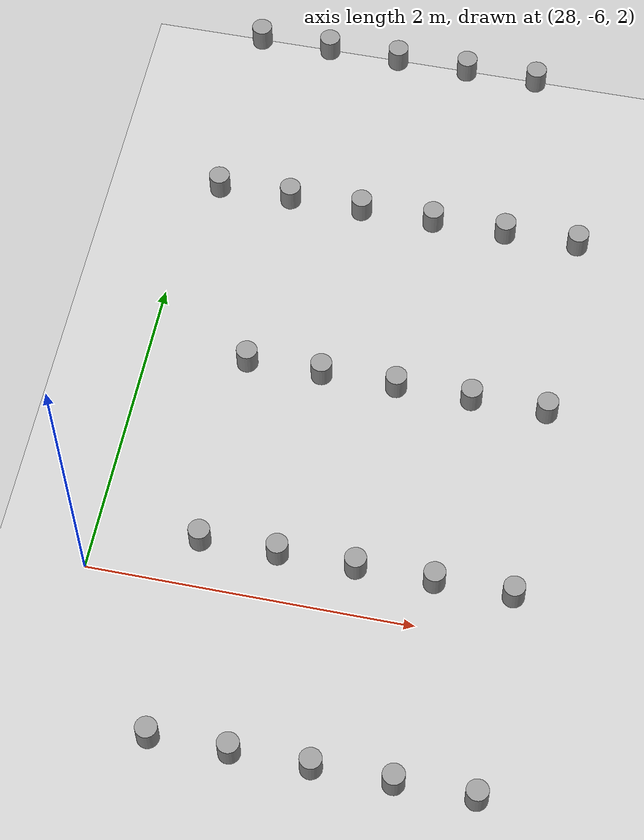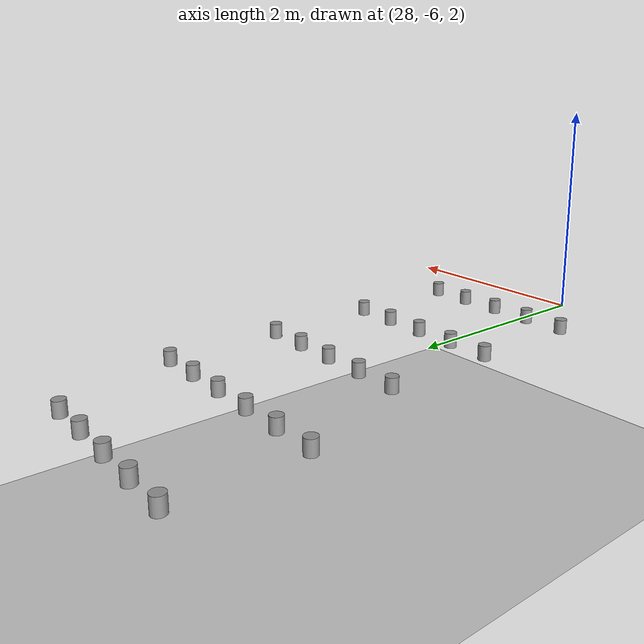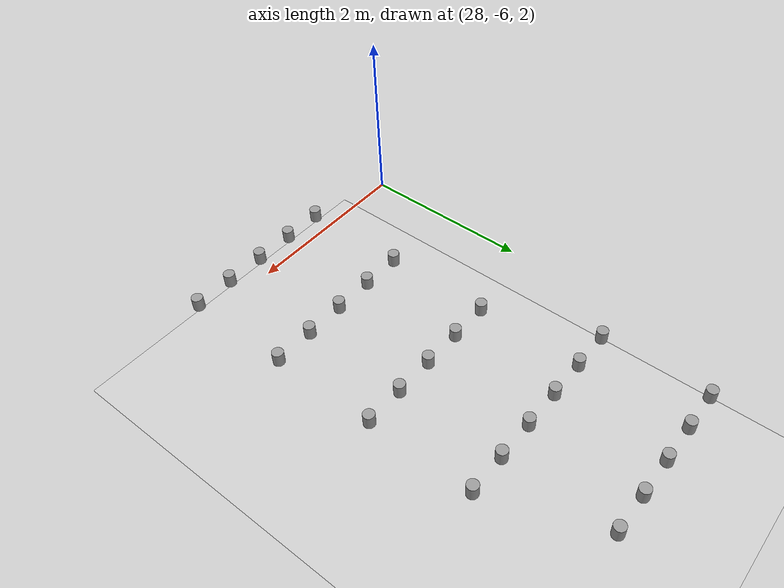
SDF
<sdf version="1.4">
 <world name="default">
  <model name="pot_213">
   <static>1</static>
   <link name="link_0">
    <collision name="collision">
     <geometry><cylinder><length>0.17</length><radius>0.07</radius></cylinder></geometry>
    </collision>
    <visual name="visual">
     <geometry><cylinder><length>0.17</length><radius>0.07</radius></cylinder></geometry>
     <material>
      <script><uri>file://media/materials/scripts/gazebo.material</uri><name>Gazebo/Grey</name></script>
      <emissive>0 0 0 1</emissive>
      <shader type="vertex"><normal_map>__default__</normal_map></shader>
      <specular>0.01 0.01 0.01 1</specular>
      <lighting>1</lighting>
      <ambient>0.1 0.1 0.1 1</ambient>
      <diffuse>0.05 0.05 0.05 1</diffuse>
     </material>
     <cast_shadows>0</cast_shadows>
    </visual>
    <pose>28.024 -2.700 1.467 0.0 0.0 0.0</pose>
   </link>
  </model>
  <model name="pot_214">
   <static>1</static>
   <link name="link_0">
    <collision name="collision">
     <geometry><cylinder><length>0.17</length><radius>0.07</radius></cylinder></geometry>
    </collision>
    <visual name="visual">
     <geometry><cylinder><length>0.17</length><radius>0.07</radius></cylinder></geometry>
     <material>
      <script><uri>file://media/materials/scripts/gazebo.material</uri><name>Gazebo/Grey</name></script>
      <emissive>0 0 0 1</emissive>
      <shader type="vertex"><normal_map>__default__</normal_map></shader>
      <specular>0.01 0.01 0.01 1</specular>
      <lighting>1</lighting>
      <ambient>0.1 0.1 0.1 1</ambient>
      <diffuse>0.05 0.05 0.05 1</diffuse>
     </material>
     <cast_shadows>0</cast_shadows>
    </visual>
    <pose>28.024 -1.350 1.467 0.0 0.0 0.0</pose>
   </link>
  </model>
  <model name="pot_215">
   <static>1</static>
   <link name="link_0">
    <collision name="collision">
     <geometry><cylinder><length>0.17</length><radius>0.07</radius></cylinder></geometry>
    </collision>
    <visual name="visual">
     <geometry><cylinder><length>0.17</length><radius>0.07</radius></cylinder></geometry>
     <material>
      <script><uri>file://media/materials/scripts/gazebo.material</uri><name>Gazebo/Grey</name></script>
      <emissive>0 0 0 1</emissive>
      <shader type="vertex"><normal_map>__default__</normal_map></shader>
      <specular>0.01 0.01 0.01 1</specular>
      <lighting>1</lighting>
      <ambient>0.1 0.1 0.1 1</ambient>
      <diffuse>0.05 0.05 0.05 1</diffuse>
     </material>
     <cast_shadows>0</cast_shadows>
    </visual>
    <pose>28.524 -6.750 1.467 0.0 0.0 0.0</pose>
   </link>
  </model>
  <model name="pot_216">
   <static>1</static>
   <link name="link_0">
    <collision name="collision">
     <geometry><cylinder><length>0.17</length><radius>0.07</radius></cylinder></geometry>
    </collision>
    <visual name="visual">
     <geometry><cylinder><length>0.17</length><radius>0.07</radius></cylinder></geometry>
     <material>
      <script><uri>file://media/materials/scripts/gazebo.material</uri><name>Gazebo/Grey</name></script>
      <emissive>0 0 0 1</emissive>
      <shader type="vertex"><normal_map>__default__</normal_map></shader>
      <specular>0.01 0.01 0.01 1</specular>
      <lighting>1</lighting>
      <ambient>0.1 0.1 0.1 1</ambient>
      <diffuse>0.05 0.05 0.05 1</diffuse>
     </material>
     <cast_shadows>0</cast_shadows>
    </visual>
    <pose>28.524 -5.400 1.467 0.0 0.0 0.0</pose>
   </link>
  </model>
  <model name="pot_217">
   <static>1</static>
   <link name="link_0">
    <collision name="collision">
     <geometry><cylinder><length>0.17</length><radius>0.07</radius></cylinder></geometry>
    </collision>
    <visual name="visual">
     <geometry><cylinder><length>0.17</length><radius>0.07</radius></cylinder></geometry>
     <material>
      <script><uri>file://media/materials/scripts/gazebo.material</uri><name>Gazebo/Grey</name></script>
      <emissive>0 0 0 1</emissive>
      <shader type="vertex"><normal_map>__default__</normal_map></shader>
      <specular>0.01 0.01 0.01 1</specular>
      <lighting>1</lighting>
      <ambient>0.1 0.1 0.1 1</ambient>
      <diffuse>0.05 0.05 0.05 1</diffuse>
     </material>
     <cast_shadows>0</cast_shadows>
    </visual>
    <pose>28.524 -4.050 1.467 0.0 0.0 0.0</pose>
   </link>
  </model>
  <model name="pot_218">
   <static>1</static>
   <link name="link_0">
    <collision name="collision">
     <geometry><cylinder><length>0.17</length><radius>0.07</radius></cylinder></geometry>
    </collision>
    <visual name="visual">
     <geometry><cylinder><length>0.17</length><radius>0.07</radius></cylinder></geometry>
     <material>
      <script><uri>file://media/materials/scripts/gazebo.material</uri><name>Gazebo/Grey</name></script>
      <emissive>0 0 0 1</emissive>
      <shader type="vertex"><normal_map>__default__</normal_map></shader>
      <specular>0.01 0.01 0.01 1</specular>
      <lighting>1</lighting>
      <ambient>0.1 0.1 0.1 1</ambient>
      <diffuse>0.05 0.05 0.05 1</diffuse>
     </material>
     <cast_shadows>0</cast_shadows>
    </visual>
    <pose>28.524 -2.700 1.467 0.0 0.0 0.0</pose>
   </link>
  </model>
  <model name="pot_219">
   <static>1</static>
   <link name="link_0">
    <collision name="collision">
     <geometry><cylinder><length>0.17</length><radius>0.07</radius></cylinder></geometry>
    </collision>
    <visual name="visual">
     <geometry><cylinder><length>0.17</length><radius>0.07</radius></cylinder></geometry>
     <material>
      <script><uri>file://media/materials/scripts/gazebo.material</uri><name>Gazebo/Grey</name></script>
      <emissive>0 0 0 1</emissive>
      <shader type="vertex"><normal_map>__default__</normal_map></shader>
      <specular>0.01 0.01 0.01 1</specular>
      <lighting>1</lighting>
      <ambient>0.1 0.1 0.1 1</ambient>
      <diffuse>0.05 0.05 0.05 1</diffuse>
     </material>
     <cast_shadows>0</cast_shadows>
    </visual>
    <pose>28.524 -1.350 1.467 0.0 0.0 0.0</pose>
   </link>
  </model>
  <model name="pot_220">
   <static>1</static>
   <link name="link_0">
    <collision name="collision">
     <geometry><cylinder><length>0.17</length><radius>0.07</radius></cylinder></geometry>
    </collision>
    <visual name="visual">
     <geometry><cylinder><length>0.17</length><radius>0.07</radius></cylinder></geometry>
     <material>
      <script><uri>file://media/materials/scripts/gazebo.material</uri><name>Gazebo/Grey</name></script>
      <emissive>0 0 0 1</emissive>
      <shader type="vertex"><normal_map>__default__</normal_map></shader>
      <specular>0.01 0.01 0.01 1</specular>
      <lighting>1</lighting>
      <ambient>0.1 0.1 0.1 1</ambient>
      <diffuse>0.05 0.05 0.05 1</diffuse>
     </material>
     <cast_shadows>0</cast_shadows>
    </visual>
    <pose>29.024 -6.750 1.467 0.0 0.0 0.0</pose>
   </link>
  </model>
  <model name="pot_221">
   <static>1</static>
   <link name="link_0">
    <collision name="collision">
     <geometry><cylinder><length>0.17</length><radius>0.07</radius></cylinder></geometry>
    </collision>
    <visual name="visual">
     <geometry><cylinder><length>0.17</length><radius>0.07</radius></cylinder></geometry>
     <material>
      <script><uri>file://media/materials/scripts/gazebo.material</uri><name>Gazebo/Grey</name></script>
      <emissive>0 0 0 1</emissive>
      <shader type="vertex"><normal_map>__default__</normal_map></shader>
      <specular>0.01 0.01 0.01 1</specular>
      <lighting>1</lighting>
      <ambient>0.1 0.1 0.1 1</ambient>
      <diffuse>0.05 0.05 0.05 1</diffuse>
     </material>
     <cast_shadows>0</cast_shadows>
    </visual>
    <pose>29.024 -5.400 1.467 0.0 0.0 0.0</pose>
   </link>
  </model>
  <model name="pot_222">
   <static>1</static>
   <link name="link_0">
    <collision name="collision">
     <geometry><cylinder><length>0.17</length><radius>0.07</radius></cylinder></geometry>
    </collision>
    <visual name="visual">
     <geometry><cylinder><length>0.17</length><radius>0.07</radius></cylinder></geometry>
     <material>
      <script><uri>file://media/materials/scripts/gazebo.material</uri><name>Gazebo/Grey</name></script>
      <emissive>0 0 0 1</emissive>
      <shader type="vertex"><normal_map>__default__</normal_map></shader>
      <specular>0.01 0.01 0.01 1</specular>
      <lighting>1</lighting>
      <ambient>0.1 0.1 0.1 1</ambient>
      <diffuse>0.05 0.05 0.05 1</diffuse>
     </material>
     <cast_shadows>0</cast_shadows>
    </visual>
    <pose>29.024 -4.050 1.467 0.0 0.0 0.0</pose>
   </link>
  </model>
  <model name="pot_223">
   <static>1</static>
   <link name="link_0">
    <collision name="collision">
     <geometry><cylinder><length>0.17</length><radius>0.07</radius></cylinder></geometry>
    </collision>
    <visual name="visual">
     <geometry><cylinder><length>0.17</length><radius>0.07</radius></cylinder></geometry>
     <material>
      <script><uri>file://media/materials/scripts/gazebo.material</uri><name>Gazebo/Grey</name></script>
      <emissive>0 0 0 1</emissive>
      <shader type="vertex"><normal_map>__default__</normal_map></shader>
      <specular>0.01 0.01 0.01 1</specular>
      <lighting>1</lighting>
      <ambient>0.1 0.1 0.1 1</ambient>
      <diffuse>0.05 0.05 0.05 1</diffuse>
     </material>
     <cast_shadows>0</cast_shadows>
    </visual>
    <pose>29.024 -2.700 1.467 0.0 0.0 0.0</pose>
   </link>
  </model>
  <model name="pot_224">
   <static>1</static>
   <link name="link_0">
    <collision name="collision">
     <geometry><cylinder><length>0.17</length><radius>0.07</radius></cylinder></geometry>
    </collision>
    <visual name="visual">
     <geometry><cylinder><length>0.17</length><radius>0.07</radius></cylinder></geometry>
     <material>
      <script><uri>file://media/materials/scripts/gazebo.material</uri><name>Gazebo/Grey</name></script>
      <emissive>0 0 0 1</emissive>
      <shader type="vertex"><normal_map>__default__</normal_map></shader>
      <specular>0.01 0.01 0.01 1</specular>
      <lighting>1</lighting>
      <ambient>0.1 0.1 0.1 1</ambient>
      <diffuse>0.05 0.05 0.05 1</diffuse>
     </material>
     <cast_shadows>0</cast_shadows>
    </visual>
    <pose>29.024 -1.350 1.467 0.0 0.0 0.0</pose>
   </link>
  </model>
  <model name="pot_225">
   <static>1</static>
   <link name="link_0">
    <collision name="collision">
     <geometry><cylinder><length>0.17</length><radius>0.07</radius></cylinder></geometry>
    </collision>
    <visual name="visual">
     <geometry><cylinder><length>0.17</length><radius>0.07</radius></cylinder></geometry>
     <material>
      <script><uri>file://media/materials/scripts/gazebo.material</uri><name>Gazebo/Grey</name></script>
      <emissive>0 0 0 1</emissive>
      <shader type="vertex"><normal_map>__default__</normal_map></shader>
      <specular>0.01 0.01 0.01 1</specular>
      <lighting>1</lighting>
      <ambient>0.1 0.1 0.1 1</ambient>
      <diffuse>0.05 0.05 0.05 1</diffuse>
     </material>
     <cast_shadows>0</cast_shadows>
    </visual>
    <pose>29.524 -6.750 1.467 0.0 0.0 0.0</pose>
   </link>
  </model>
  <model name="pot_226">
   <static>1</static>
   <link name="link_0">
    <collision name="collision">
     <geometry><cylinder><length>0.17</length><radius>0.07</radius></cylinder></geometry>
    </collision>
    <visual name="visual">
     <geometry><cylinder><length>0.17</length><radius>0.07</radius></cylinder></geometry>
     <material>
      <script><uri>file://media/materials/scripts/gazebo.material</uri><name>Gazebo/Grey</name></script>
      <emissive>0 0 0 1</emissive>
      <shader type="vertex"><normal_map>__default__</normal_map></shader>
      <specular>0.01 0.01 0.01 1</specular>
      <lighting>1</lighting>
      <ambient>0.1 0.1 0.1 1</ambient>
      <diffuse>0.05 0.05 0.05 1</diffuse>
     </material>
     <cast_shadows>0</cast_shadows>
    </visual>
    <pose>29.524 -5.400 1.467 0.0 0.0 0.0</pose>
   </link>
  </model>
  <model name="pot_227">
   <static>1</static>
   <link name="link_0">
    <collision name="collision">
     <geometry><cylinder><length>0.17</length><radius>0.07</radius></cylinder></geometry>
    </collision>
    <visual name="visual">
     <geometry><cylinder><length>0.17</length><radius>0.07</radius></cylinder></geometry>
     <material>
      <script><uri>file://media/materials/scripts/gazebo.material</uri><name>Gazebo/Grey</name></script>
      <emissive>0 0 0 1</emissive>
      <shader type="vertex"><normal_map>__default__</normal_map></shader>
      <specular>0.01 0.01 0.01 1</specular>
      <lighting>1</lighting>
      <ambient>0.1 0.1 0.1 1</ambient>
      <diffuse>0.05 0.05 0.05 1</diffuse>
     </material>
     <cast_shadows>0</cast_shadows>
    </visual>
    <pose>29.524 -4.050 1.467 0.0 0.0 0.0</pose>
   </link>
  </model>
  <model name="pot_228">
   <static>1</static>
   <link name="link_0">
    <collision name="collision">
     <geometry><cylinder><length>0.17</length><radius>0.07</radius></cylinder></geometry>
    </collision>
    <visual name="visual">
     <geometry><cylinder><length>0.17</length><radius>0.07</radius></cylinder></geometry>
     <material>
      <script><uri>file://media/materials/scripts/gazebo.material</uri><name>Gazebo/Grey</name></script>
      <emissive>0 0 0 1</emissive>
      <shader type="vertex"><normal_map>__default__</normal_map></shader>
      <specular>0.01 0.01 0.01 1</specular>
      <lighting>1</lighting>
      <ambient>0.1 0.1 0.1 1</ambient>
      <diffuse>0.05 0.05 0.05 1</diffuse>
     </material>
     <cast_shadows>0</cast_shadows>
    </visual>
    <pose>29.524 -2.700 1.467 0.0 0.0 0.0</pose>
   </link>
  </model>
  <model name="pot_229">
   <static>1</static>
   <link name="link_0">
    <collision name="collision">
     <geometry><cylinder><length>0.17</length><radius>0.07</radius></cylinder></geometry>
    </collision>
    <visual name="visual">
     <geometry><cylinder><length>0.17</length><radius>0.07</radius></cylinder></geometry>
     <material>
      <script><uri>file://media/materials/scripts/gazebo.material</uri><name>Gazebo/Grey</name></script>
      <emissive>0 0 0 1</emissive>
      <shader type="vertex"><normal_map>__default__</normal_map></shader>
      <specular>0.01 0.01 0.01 1</specular>
      <lighting>1</lighting>
      <ambient>0.1 0.1 0.1 1</ambient>
      <diffuse>0.05 0.05 0.05 1</diffuse>
     </material>
     <cast_shadows>0</cast_shadows>
    </visual>
    <pose>29.524 -1.350 1.467 0.0 0.0 0.0</pose>
   </link>
  </model>
  <model name="pot_230">
   <static>1</static>
   <link name="link_0">
    <collision name="collision">
     <geometry><cylinder><length>0.17</length><radius>0.07</radius></cylinder></geometry>
    </collision>
    <visual name="visual">
     <geometry><cylinder><length>0.17</length><radius>0.07</radius></cylinder></geometry>
     <material>
      <script><uri>file://media/materials/scripts/gazebo.material</uri><name>Gazebo/Grey</name></script>
      <emissive>0 0 0 1</emissive>
      <shader type="vertex"><normal_map>__default__</normal_map></shader>
      <specular>0.01 0.01 0.01 1</specular>
      <lighting>1</lighting>
      <ambient>0.1 0.1 0.1 1</ambient>
      <diffuse>0.05 0.05 0.05 1</diffuse>
     </material>
     <cast_shadows>0</cast_shadows>
    </visual>
    <pose>30.024 -6.750 1.467 0.0 0.0 0.0</pose>
   </link>
  </model>
  <model name="pot_231">
   <static>1</static>
   <link name="link_0">
    <collision name="collision">
     <geometry><cylinder><length>0.17</length><radius>0.07</radius></cylinder></geometry>
    </collision>
    <visual name="visual">
     <geometry><cylinder><length>0.17</length><radius>0.07</radius></cylinder></geometry>
     <material>
      <script><uri>file://media/materials/scripts/gazebo.material</uri><name>Gazebo/Grey</name></script>
      <emissive>0 0 0 1</emissive>
      <shader type="vertex"><normal_map>__default__</normal_map></shader>
      <specular>0.01 0.01 0.01 1</specular>
      <lighting>1</lighting>
      <ambient>0.1 0.1 0.1 1</ambient>
      <diffuse>0.05 0.05 0.05 1</diffuse>
     </material>
     <cast_shadows>0</cast_shadows>
    </visual>
    <pose>30.024 -5.400 1.467 0.0 0.0 0.0</pose>
   </link>
  </model>
  <model name="pot_232">
   <static>1</static>
   <link name="link_0">
    <collision name="collision">
     <geometry><cylinder><length>0.17</length><radius>0.07</radius></cylinder></geometry>
    </collision>
    <visual name="visual">
     <geometry><cylinder><length>0.17</length><radius>0.07</radius></cylinder></geometry>
     <material>
      <script><uri>file://media/materials/scripts/gazebo.material</uri><name>Gazebo/Grey</name></script>
      <emissive>0 0 0 1</emissive>
      <shader type="vertex"><normal_map>__default__</normal_map></shader>
      <specular>0.01 0.01 0.01 1</specular>
      <lighting>1</lighting>
      <ambient>0.1 0.1 0.1 1</ambient>
      <diffuse>0.05 0.05 0.05 1</diffuse>
     </material>
     <cast_shadows>0</cast_shadows>
    </visual>
    <pose>30.024 -4.050 1.467 0.0 0.0 0.0</pose>
   </link>
  </model>
  <model name="pot_233">
   <static>1</static>
   <link name="link_0">
    <collision name="collision">
     <geometry><cylinder><length>0.17</length><radius>0.07</radius></cylinder></geometry>
    </collision>
    <visual name="visual">
     <geometry><cylinder><length>0.17</length><radius>0.07</radius></cylinder></geometry>
     <material>
      <script><uri>file://media/materials/scripts/gazebo.material</uri><name>Gazebo/Grey</name></script>
      <emissive>0 0 0 1</emissive>
      <shader type="vertex"><normal_map>__default__</normal_map></shader>
      <specular>0.01 0.01 0.01 1</specular>
      <lighting>1</lighting>
      <ambient>0.1 0.1 0.1 1</ambient>
      <diffuse>0.05 0.05 0.05 1</diffuse>
     </material>
     <cast_shadows>0</cast_shadows>
    </visual>
    <pose>30.024 -2.700 1.467 0.0 0.0 0.0</pose>
   </link>
  </model>
  <model name="pot_234">
   <static>1</static>
   <link name="link_0">
    <collision name="collision">
     <geometry><cylinder><length>0.17</length><radius>0.07</radius></cylinder></geometry>
    </collision>
    <visual name="visual">
     <geometry><cylinder><length>0.17</length><radius>0.07</radius></cylinder></geometry>
     <material>
      <script><uri>file://media/materials/scripts/gazebo.material</uri><name>Gazebo/Grey</name></script>
      <emissive>0 0 0 1</emissive>
      <shader type="vertex"><normal_map>__default__</normal_map></shader>
      <specular>0.01 0.01 0.01 1</specular>
      <lighting>1</lighting>
      <ambient>0.1 0.1 0.1 1</ambient>
      <diffuse>0.05 0.05 0.05 1</diffuse>
     </material>
     <cast_shadows>0</cast_shadows>
    </visual>
    <pose>30.024 -1.350 1.467 0.0 0.0 0.0</pose>
   </link>
  </model>
  <model name="pot_235">
   <static>1</static>
   <link name="link_0">
    <collision name="collision">
     <geometry><cylinder><length>0.17</length><radius>0.07</radius></cylinder></geometry>
    </collision>
    <visual name="visual">
     <geometry><cylinder><length>0.17</length><radius>0.07</radius></cylinder></geometry>
     <material>
      <script><uri>file://media/materials/scripts/gazebo.material</uri><name>Gazebo/Grey</name></script>
      <emissive>0 0 0 1</emissive>
      <shader type="vertex"><normal_map>__default__</normal_map></shader>
      <specular>0.01 0.01 0.01 1</specular>
      <lighting>1</lighting>
      <ambient>0.1 0.1 0.1 1</ambient>
      <diffuse>0.05 0.05 0.05 1</diffuse>
     </material>
     <cast_shadows>0</cast_shadows>
    </visual>
    <pose>30.524 -6.750 1.467 0.0 0.0 0.0</pose>
   </link>
  </model>
  <model name="pot_236">
   <static>1</static>
   <link name="link_0">
    <collision name="collision">
     <geometry><cylinder><length>0.17</length><radius>0.07</radius></cylinder></geometry>
    </collision>
    <visual name="visual">
     <geometry><cylinder><length>0.17</length><radius>0.07</radius></cylinder></geometry>
     <material>
      <script><uri>file://media/materials/scripts/gazebo.material</uri><name>Gazebo/Grey</name></script>
      <emissive>0 0 0 1</emissive>
      <shader type="vertex"><normal_map>__default__</normal_map></shader>
      <specular>0.01 0.01 0.01 1</specular>
      <lighting>1</lighting>
      <ambient>0.1 0.1 0.1 1</ambient>
      <diffuse>0.05 0.05 0.05 1</diffuse>
     </material>
     <cast_shadows>0</cast_shadows>
    </visual>
    <pose>30.524 -5.400 1.467 0.0 0.0 0.0</pose>
   </link>
  </model>
  <model name="pot_237">
   <static>1</static>
   <link name="link_0">
    <collision name="collision">
     <geometry><cylinder><length>0.17</length><radius>0.07</radius></cylinder></geometry>
    </collision>
    <visual name="visual">
     <geometry><cylinder><length>0.17</length><radius>0.07</radius></cylinder></geometry>
     <material>
      <script><uri>file://media/materials/scripts/gazebo.material</uri><name>Gazebo/Grey</name></script>
      <emissive>0 0 0 1</emissive>
      <shader type="vertex"><normal_map>__default__</normal_map></shader>
      <specular>0.01 0.01 0.01 1</specular>
      <lighting>1</lighting>
      <ambient>0.1 0.1 0.1 1</ambient>
      <diffuse>0.05 0.05 0.05 1</diffuse>
     </material>
     <cast_shadows>0</cast_shadows>
    </visual>
    <pose>30.524 -4.050 1.467 0.0 0.0 0.0</pose>
   </link>
  </model>
  <model name="pot_238">
   <static>1</static>
   <link name="link_0">
    <collision name="collision">
     <geometry><cylinder><length>0.17</length><radius>0.07</radius></cylinder></geometry>
    </collision>
    <visual name="visual">
     <geometry><cylinder><length>0.17</length><radius>0.07</radius></cylinder></geometry>
     <material>
      <script><uri>file://media/materials/scripts/gazebo.material</uri><name>Gazebo/Grey</name></script>
      <emissive>0 0 0 1</emissive>
      <shader type="vertex"><normal_map>__default__</normal_map></shader>
      <specular>0.01 0.01 0.01 1</specular>
      <lighting>1</lighting>
      <ambient>0.1 0.1 0.1 1</ambient>
      <diffuse>0.05 0.05 0.05 1</diffuse>
     </material>
     <cast_shadows>0</cast_shadows>
    </visual>
    <pose>30.524 -2.700 1.467 0.0 0.0 0.0</pose>
   </link>
  </model>
  <include><uri>model://sun</uri></include>
  <include><uri>model://ground_plane</uri></include>
 </world>
</sdf>
